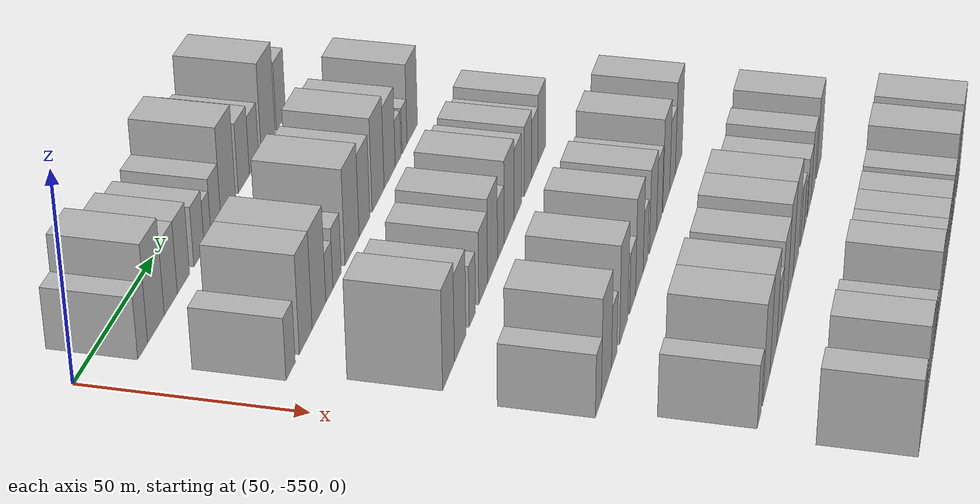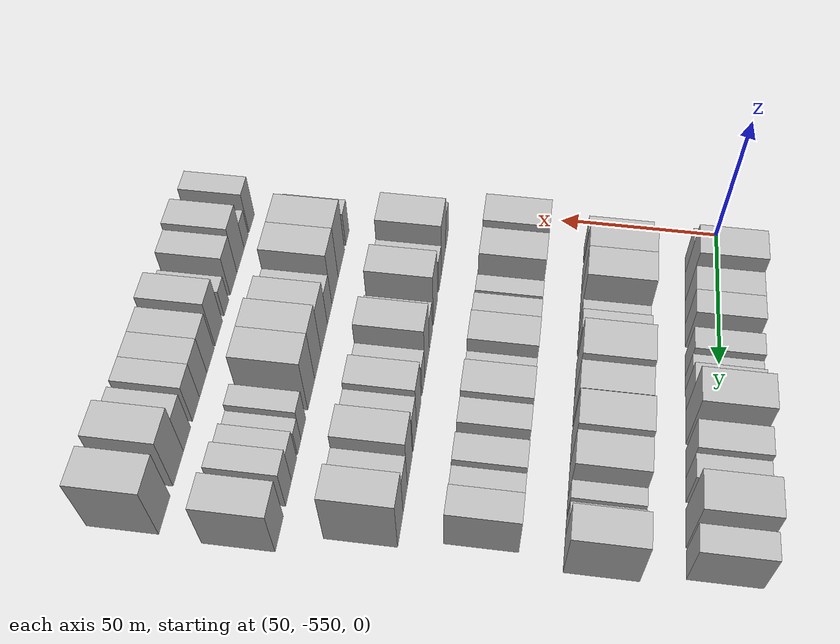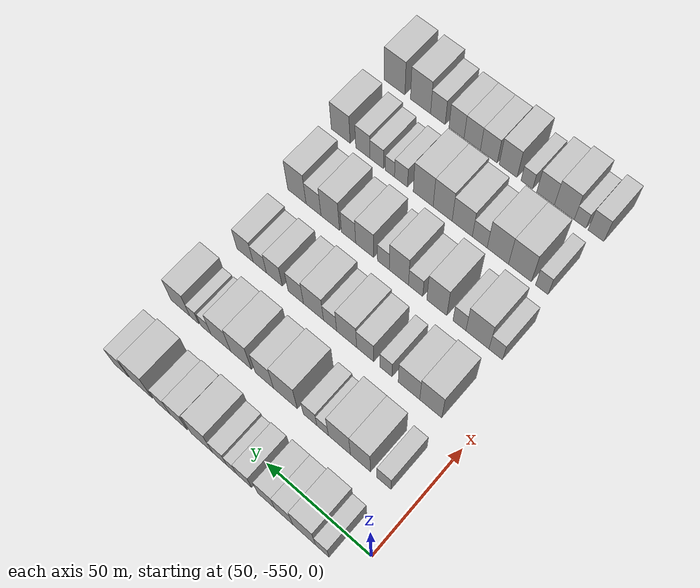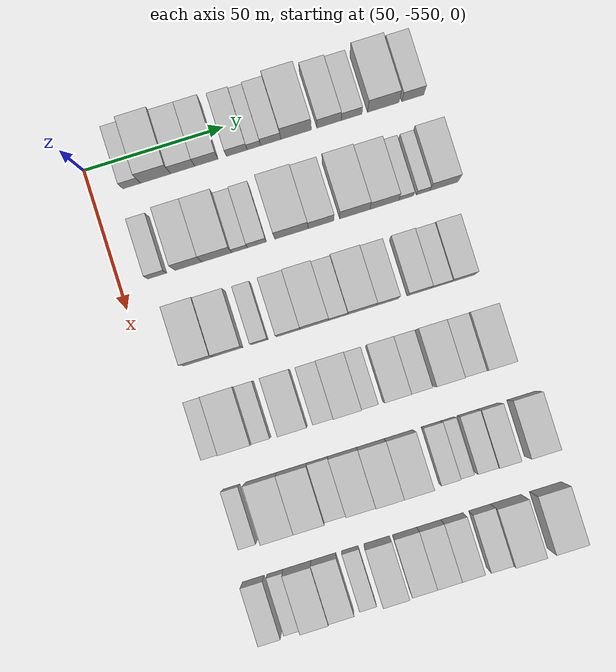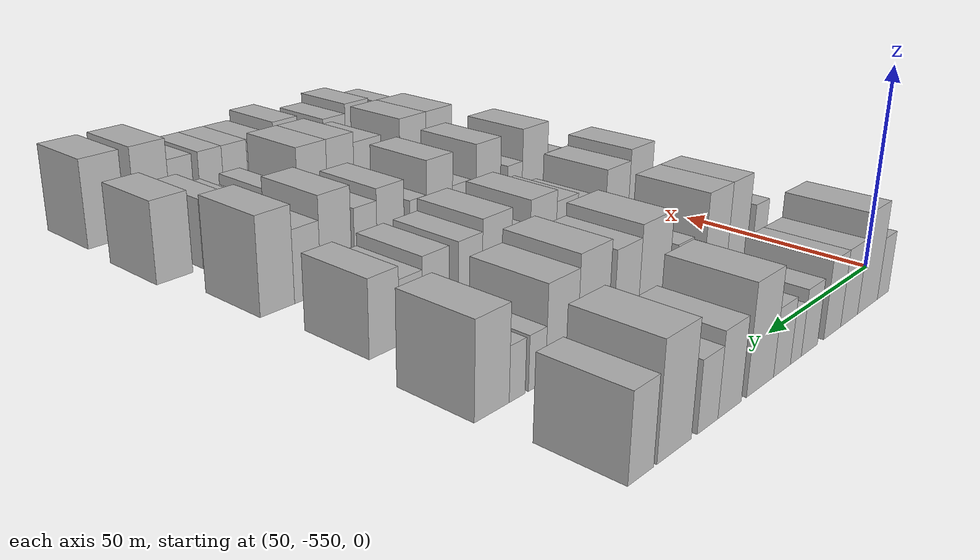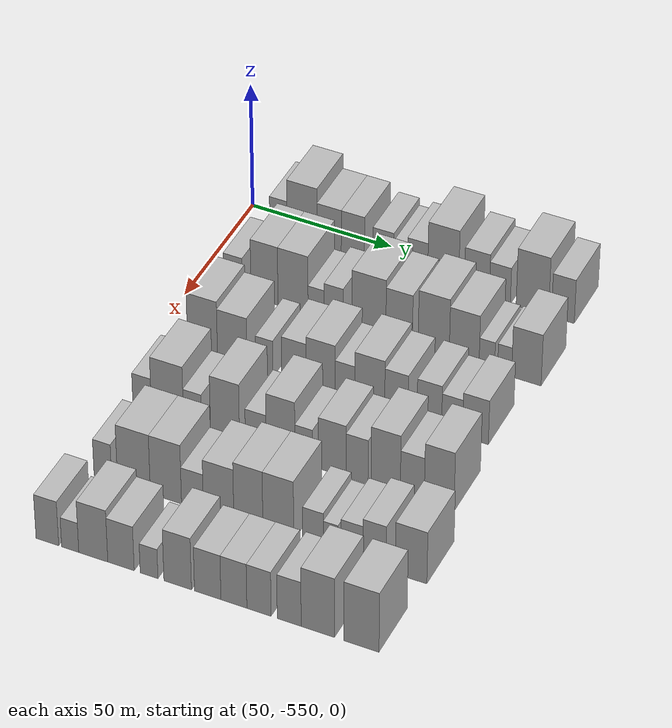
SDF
<sdf version="1.6">
 <world name="default">
  <model name="building_1">
   <static>1</static>
   <pose>50.0000 -535.8745 0 0.000000 0.000000 0.000000</pose>
   <link name="link">
    <pose>0 0 7.50 0 0 0</pose>
    <collision name="collision"><geometry><box><size>20.0000 6.2510 15.0000</size></box></geometry></collision>
    <visual name="visual">
     <cast_shadows>0</cast_shadows>
     <geometry><box><size>20.0000 6.2510 15.0000</size></box></geometry>
     <material>
      <script>
       <uri>model://HANNAS_wall/materials/scripts</uri>
       <uri>model://HANNAS_wall/materials/textures</uri>
       <name>vrc/HANNAS_wall</name>
      </script>
     </material>
    </visual>
   </link>
  </model>
  <model name="building_2">
   <static>1</static>
   <pose>50.0000 -527.3522 0 0.000000 0.000000 0.000000</pose>
   <link name="link">
    <pose>0 0 12.00 0 0 0</pose>
    <collision name="collision"><geometry><box><size>20.0000 10.7935 24.0000</size></box></geometry></collision>
    <visual name="visual">
     <cast_shadows>0</cast_shadows>
     <geometry><box><size>20.0000 10.7935 24.0000</size></box></geometry>
     <material>
      <script>
       <uri>model://HANNAS_wall/materials/scripts</uri>
       <uri>model://HANNAS_wall/materials/textures</uri>
       <name>vrc/HANNAS_wall</name>
      </script>
     </material>
    </visual>
   </link>
  </model>
  <model name="building_3">
   <static>1</static>
   <pose>50.0000 -517.6085 0 0.000000 0.000000 0.000000</pose>
   <link name="link">
    <pose>0 0 9.00 0 0 0</pose>
    <collision name="collision"><geometry><box><size>20.0000 8.6939 18.0000</size></box></geometry></collision>
    <visual name="visual">
     <cast_shadows>0</cast_shadows>
     <geometry><box><size>20.0000 8.6939 18.0000</size></box></geometry>
     <material>
      <script>
       <uri>model://HANNAS_wall/materials/scripts</uri>
       <uri>model://HANNAS_wall/materials/textures</uri>
       <name>vrc/HANNAS_wall</name>
      </script>
     </material>
    </visual>
   </link>
  </model>
  <model name="building_4">
   <static>1</static>
   <pose>50.0000 -509.1116 0 0.000000 0.000000 0.000000</pose>
   <link name="link">
    <pose>0 0 9.00 0 0 0</pose>
    <collision name="collision"><geometry><box><size>20.0000 8.2998 18.0000</size></box></geometry></collision>
    <visual name="visual">
     <cast_shadows>0</cast_shadows>
     <geometry><box><size>20.0000 8.2998 18.0000</size></box></geometry>
     <material>
      <script>
       <uri>model://HANNAS_wall/materials/scripts</uri>
       <uri>model://HANNAS_wall/materials/textures</uri>
       <name>vrc/HANNAS_wall</name>
      </script>
     </material>
    </visual>
   </link>
  </model>
  <model name="building_5">
   <static>1</static>
   <pose>50.0000 -498.2551 0 0.000000 0.000000 0.000000</pose>
   <link name="link">
    <pose>0 0 7.50 0 0 0</pose>
    <collision name="collision"><geometry><box><size>20.0000 7.4133 15.0000</size></box></geometry></collision>
    <visual name="visual">
     <cast_shadows>0</cast_shadows>
     <geometry><box><size>20.0000 7.4133 15.0000</size></box></geometry>
     <material>
      <script>
       <uri>model://HANNAS_wall/materials/scripts</uri>
       <uri>model://HANNAS_wall/materials/textures</uri>
       <name>vrc/HANNAS_wall</name>
      </script>
     </material>
    </visual>
   </link>
  </model>
  <model name="building_6">
   <static>1</static>
   <pose>50.0000 -492.1397 0 0.000000 0.000000 0.000000</pose>
   <link name="link">
    <pose>0 0 6.00 0 0 0</pose>
    <collision name="collision"><geometry><box><size>20.0000 4.8175 12.0000</size></box></geometry></collision>
    <visual name="visual">
     <cast_shadows>0</cast_shadows>
     <geometry><box><size>20.0000 4.8175 12.0000</size></box></geometry>
     <material>
      <script>
       <uri>model://HANNAS_wall/materials/scripts</uri>
       <uri>model://HANNAS_wall/materials/textures</uri>
       <name>vrc/HANNAS_wall</name>
      </script>
     </material>
    </visual>
   </link>
  </model>
  <model name="building_7">
   <static>1</static>
   <pose>50.0000 -486.1267 0 0.000000 0.000000 0.000000</pose>
   <link name="link">
    <pose>0 0 7.50 0 0 0</pose>
    <collision name="collision"><geometry><box><size>20.0000 7.2085 15.0000</size></box></geometry></collision>
    <visual name="visual">
     <cast_shadows>0</cast_shadows>
     <geometry><box><size>20.0000 7.2085 15.0000</size></box></geometry>
     <material>
      <script>
       <uri>model://HANNAS_wall/materials/scripts</uri>
       <uri>model://HANNAS_wall/materials/textures</uri>
       <name>vrc/HANNAS_wall</name>
      </script>
     </material>
    </visual>
   </link>
  </model>
  <model name="building_8">
   <static>1</static>
   <pose>50.0000 -477.0658 0 0.000000 0.000000 0.000000</pose>
   <link name="link">
    <pose>0 0 12.00 0 0 0</pose>
    <collision name="collision"><geometry><box><size>20.0000 10.9132 24.0000</size></box></geometry></collision>
    <visual name="visual">
     <cast_shadows>0</cast_shadows>
     <geometry><box><size>20.0000 10.9132 24.0000</size></box></geometry>
     <material>
      <script>
       <uri>model://HANNAS_wall/materials/scripts</uri>
       <uri>model://HANNAS_wall/materials/textures</uri>
       <name>vrc/HANNAS_wall</name>
      </script>
     </material>
    </visual>
   </link>
  </model>
  <model name="building_9">
   <static>1</static>
   <pose>50.0000 -465.2385 0 0.000000 0.000000 0.000000</pose>
   <link name="link">
    <pose>0 0 9.00 0 0 0</pose>
    <collision name="collision"><geometry><box><size>20.0000 8.7415 18.0000</size></box></geometry></collision>
    <visual name="visual">
     <cast_shadows>0</cast_shadows>
     <geometry><box><size>20.0000 8.7415 18.0000</size></box></geometry>
     <material>
      <script>
       <uri>model://HANNAS_wall/materials/scripts</uri>
       <uri>model://HANNAS_wall/materials/textures</uri>
       <name>vrc/HANNAS_wall</name>
      </script>
     </material>
    </visual>
   </link>
  </model>
  <model name="building_10">
   <static>1</static>
   <pose>50.0000 -457.1915 0 0.000000 0.000000 0.000000</pose>
   <link name="link">
    <pose>0 0 7.50 0 0 0</pose>
    <collision name="collision"><geometry><box><size>20.0000 7.3526 15.0000</size></box></geometry></collision>
    <visual name="visual">
     <cast_shadows>0</cast_shadows>
     <geometry><box><size>20.0000 7.3526 15.0000</size></box></geometry>
     <material>
      <script>
       <uri>model://HANNAS_wall/materials/scripts</uri>
       <uri>model://HANNAS_wall/materials/textures</uri>
       <name>vrc/HANNAS_wall</name>
      </script>
     </material>
    </visual>
   </link>
  </model>
  <model name="building_11">
   <static>1</static>
   <pose>50.0000 -445.8810 0 0.000000 0.000000 0.000000</pose>
   <link name="link">
    <pose>0 0 12.00 0 0 0</pose>
    <collision name="collision"><geometry><box><size>20.0000 11.2683 24.0000</size></box></geometry></collision>
    <visual name="visual">
     <cast_shadows>0</cast_shadows>
     <geometry><box><size>20.0000 11.2683 24.0000</size></box></geometry>
     <material>
      <script>
       <uri>model://HANNAS_wall/materials/scripts</uri>
       <uri>model://HANNAS_wall/materials/textures</uri>
       <name>vrc/HANNAS_wall</name>
      </script>
     </material>
    </visual>
   </link>
  </model>
  <model name="building_12">
   <static>1</static>
   <pose>50.0000 -435.3083 0 0.000000 0.000000 0.000000</pose>
   <link name="link">
    <pose>0 0 9.00 0 0 0</pose>
    <collision name="collision"><geometry><box><size>20.0000 7.8771 18.0000</size></box></geometry></collision>
    <visual name="visual">
     <cast_shadows>0</cast_shadows>
     <geometry><box><size>20.0000 7.8771 18.0000</size></box></geometry>
     <material>
      <script>
       <uri>model://HANNAS_wall/materials/scripts</uri>
       <uri>model://HANNAS_wall/materials/textures</uri>
       <name>vrc/HANNAS_wall</name>
      </script>
     </material>
    </visual>
   </link>
  </model>
  <model name="building_123">
   <static>1</static>
   <pose>82.0000 -536.6521 0 0.000000 0.000000 0.000000</pose>
   <link name="link">
    <pose>0 0 7.50 0 0 0</pose>
    <collision name="collision"><geometry><box><size>20.0000 6.6958 15.0000</size></box></geometry></collision>
    <visual name="visual">
     <cast_shadows>0</cast_shadows>
     <geometry><box><size>20.0000 6.6958 15.0000</size></box></geometry>
     <material>
      <script>
       <uri>model://HANNAS_wall/materials/scripts</uri>
       <uri>model://HANNAS_wall/materials/textures</uri>
       <name>vrc/HANNAS_wall</name>
      </script>
     </material>
    </visual>
   </link>
  </model>
  <model name="building_124">
   <static>1</static>
   <pose>82.0000 -525.4978 0 0.000000 0.000000 0.000000</pose>
   <link name="link">
    <pose>0 0 12.00 0 0 0</pose>
    <collision name="collision"><geometry><box><size>20.0000 9.6128 24.0000</size></box></geometry></collision>
    <visual name="visual">
     <cast_shadows>0</cast_shadows>
     <geometry><box><size>20.0000 9.6128 24.0000</size></box></geometry>
     <material>
      <script>
       <uri>model://HANNAS_wall/materials/scripts</uri>
       <uri>model://HANNAS_wall/materials/textures</uri>
       <name>vrc/HANNAS_wall</name>
      </script>
     </material>
    </visual>
   </link>
  </model>
  <model name="building_125">
   <static>1</static>
   <pose>82.0000 -515.3615 0 0.000000 0.000000 0.000000</pose>
   <link name="link">
    <pose>0 0 12.00 0 0 0</pose>
    <collision name="collision"><geometry><box><size>20.0000 10.6598 24.0000</size></box></geometry></collision>
    <visual name="visual">
     <cast_shadows>0</cast_shadows>
     <geometry><box><size>20.0000 10.6598 24.0000</size></box></geometry>
     <material>
      <script>
       <uri>model://HANNAS_wall/materials/scripts</uri>
       <uri>model://HANNAS_wall/materials/textures</uri>
       <name>vrc/HANNAS_wall</name>
      </script>
     </material>
    </visual>
   </link>
  </model>
  <model name="building_126">
   <static>1</static>
   <pose>82.0000 -507.2166 0 0.000000 0.000000 0.000000</pose>
   <link name="link">
    <pose>0 0 6.00 0 0 0</pose>
    <collision name="collision"><geometry><box><size>20.0000 5.6299 12.0000</size></box></geometry></collision>
    <visual name="visual">
     <cast_shadows>0</cast_shadows>
     <geometry><box><size>20.0000 5.6299 12.0000</size></box></geometry>
     <material>
      <script>
       <uri>model://HANNAS_wall/materials/scripts</uri>
       <uri>model://HANNAS_wall/materials/textures</uri>
       <name>vrc/HANNAS_wall</name>
      </script>
     </material>
    </visual>
   </link>
  </model>
  <model name="building_127">
   <static>1</static>
   <pose>82.0000 -501.0376 0 0.000000 0.000000 0.000000</pose>
   <link name="link">
    <pose>0 0 7.50 0 0 0</pose>
    <collision name="collision"><geometry><box><size>20.0000 6.7283 15.0000</size></box></geometry></collision>
    <visual name="visual">
     <cast_shadows>0</cast_shadows>
     <geometry><box><size>20.0000 6.7283 15.0000</size></box></geometry>
     <material>
      <script>
       <uri>model://HANNAS_wall/materials/scripts</uri>
       <uri>model://HANNAS_wall/materials/textures</uri>
       <name>vrc/HANNAS_wall</name>
      </script>
     </material>
    </visual>
   </link>
  </model>
  <model name="building_128">
   <static>1</static>
   <pose>82.0000 -488.7170 0 0.000000 0.000000 0.000000</pose>
   <link name="link">
    <pose>0 0 12.00 0 0 0</pose>
    <collision name="collision"><geometry><box><size>20.0000 11.9128 24.0000</size></box></geometry></collision>
    <visual name="visual">
     <cast_shadows>0</cast_shadows>
     <geometry><box><size>20.0000 11.9128 24.0000</size></box></geometry>
     <material>
      <script>
       <uri>model://HANNAS_wall/materials/scripts</uri>
       <uri>model://HANNAS_wall/materials/textures</uri>
       <name>vrc/HANNAS_wall</name>
      </script>
     </material>
    </visual>
   </link>
  </model>
  <model name="building_129">
   <static>1</static>
   <pose>82.0000 -478.1399 0 0.000000 0.000000 0.000000</pose>
   <link name="link">
    <pose>0 0 10.50 0 0 0</pose>
    <collision name="collision"><geometry><box><size>20.0000 9.2414 21.0000</size></box></geometry></collision>
    <visual name="visual">
     <cast_shadows>0</cast_shadows>
     <geometry><box><size>20.0000 9.2414 21.0000</size></box></geometry>
     <material>
      <script>
       <uri>model://HANNAS_wall/materials/scripts</uri>
       <uri>model://HANNAS_wall/materials/textures</uri>
       <name>vrc/HANNAS_wall</name>
      </script>
     </material>
    </visual>
   </link>
  </model>
  <model name="building_130">
   <static>1</static>
   <pose>82.0000 -466.1386 0 0.000000 0.000000 0.000000</pose>
   <link name="link">
    <pose>0 0 12.00 0 0 0</pose>
    <collision name="collision"><geometry><box><size>20.0000 10.7614 24.0000</size></box></geometry></collision>
    <visual name="visual">
     <cast_shadows>0</cast_shadows>
     <geometry><box><size>20.0000 10.7614 24.0000</size></box></geometry>
     <material>
      <script>
       <uri>model://HANNAS_wall/materials/scripts</uri>
       <uri>model://HANNAS_wall/materials/textures</uri>
       <name>vrc/HANNAS_wall</name>
      </script>
     </material>
    </visual>
   </link>
  </model>
  <model name="building_131">
   <static>1</static>
   <pose>82.0000 -455.6285 0 0.000000 0.000000 0.000000</pose>
   <link name="link">
    <pose>0 0 10.50 0 0 0</pose>
    <collision name="collision"><geometry><box><size>20.0000 10.2587 21.0000</size></box></geometry></collision>
    <visual name="visual">
     <cast_shadows>0</cast_shadows>
     <geometry><box><size>20.0000 10.2587 21.0000</size></box></geometry>
     <material>
      <script>
       <uri>model://HANNAS_wall/materials/scripts</uri>
       <uri>model://HANNAS_wall/materials/textures</uri>
       <name>vrc/HANNAS_wall</name>
      </script>
     </material>
    </visual>
   </link>
  </model>
  <model name="building_132">
   <static>1</static>
   <pose>82.0000 -447.8293 0 0.000000 0.000000 0.000000</pose>
   <link name="link">
    <pose>0 0 6.00 0 0 0</pose>
    <collision name="collision"><geometry><box><size>20.0000 5.3396 12.0000</size></box></geometry></collision>
    <visual name="visual">
     <cast_shadows>0</cast_shadows>
     <geometry><box><size>20.0000 5.3396 12.0000</size></box></geometry>
     <material>
      <script>
       <uri>model://HANNAS_wall/materials/scripts</uri>
       <uri>model://HANNAS_wall/materials/textures</uri>
       <name>vrc/HANNAS_wall</name>
      </script>
     </material>
    </visual>
   </link>
  </model>
  <model name="building_133">
   <static>1</static>
   <pose>82.0000 -441.7567 0 0.000000 0.000000 0.000000</pose>
   <link name="link">
    <pose>0 0 6.00 0 0 0</pose>
    <collision name="collision"><geometry><box><size>20.0000 4.8057 12.0000</size></box></geometry></collision>
    <visual name="visual">
     <cast_shadows>0</cast_shadows>
     <geometry><box><size>20.0000 4.8057 12.0000</size></box></geometry>
     <material>
      <script>
       <uri>model://HANNAS_wall/materials/scripts</uri>
       <uri>model://HANNAS_wall/materials/textures</uri>
       <name>vrc/HANNAS_wall</name>
      </script>
     </material>
    </visual>
   </link>
  </model>
  <model name="building_134">
   <static>1</static>
   <pose>82.0000 -434.3167 0 0.000000 0.000000 0.000000</pose>
   <link name="link">
    <pose>0 0 10.50 0 0 0</pose>
    <collision name="collision"><geometry><box><size>20.0000 10.0742 21.0000</size></box></geometry></collision>
    <visual name="visual">
     <cast_shadows>0</cast_shadows>
     <geometry><box><size>20.0000 10.0742 21.0000</size></box></geometry>
     <material>
      <script>
       <uri>model://HANNAS_wall/materials/scripts</uri>
       <uri>model://HANNAS_wall/materials/textures</uri>
       <name>vrc/HANNAS_wall</name>
      </script>
     </material>
    </visual>
   </link>
  </model>
  <model name="building_240">
   <static>1</static>
   <pose>114.0000 -531.7302 0 0.000000 0.000000 0.000000</pose>
   <link name="link">
    <pose>0 0 12.00 0 0 0</pose>
    <collision name="collision"><geometry><box><size>20.0000 10.5396 24.0000</size></box></geometry></collision>
    <visual name="visual">
     <cast_shadows>0</cast_shadows>
     <geometry><box><size>20.0000 10.5396 24.0000</size></box></geometry>
     <material>
      <script>
       <uri>model://HANNAS_wall/materials/scripts</uri>
       <uri>model://HANNAS_wall/materials/textures</uri>
       <name>vrc/HANNAS_wall</name>
      </script>
     </material>
    </visual>
   </link>
  </model>
  <model name="building_241">
   <static>1</static>
   <pose>114.0000 -521.2682 0 0.000000 0.000000 0.000000</pose>
   <link name="link">
    <pose>0 0 10.50 0 0 0</pose>
    <collision name="collision"><geometry><box><size>20.0000 10.3843 21.0000</size></box></geometry></collision>
    <visual name="visual">
     <cast_shadows>0</cast_shadows>
     <geometry><box><size>20.0000 10.3843 21.0000</size></box></geometry>
     <material>
      <script>
       <uri>model://HANNAS_wall/materials/scripts</uri>
       <uri>model://HANNAS_wall/materials/textures</uri>
       <name>vrc/HANNAS_wall</name>
      </script>
     </material>
    </visual>
   </link>
  </model>
  <model name="building_242">
   <static>1</static>
   <pose>114.0000 -510.0686 0 0.000000 0.000000 0.000000</pose>
   <link name="link">
    <pose>0 0 7.50 0 0 0</pose>
    <collision name="collision"><geometry><box><size>20.0000 6.0149 15.0000</size></box></geometry></collision>
    <visual name="visual">
     <cast_shadows>0</cast_shadows>
     <geometry><box><size>20.0000 6.0149 15.0000</size></box></geometry>
     <material>
      <script>
       <uri>model://HANNAS_wall/materials/scripts</uri>
       <uri>model://HANNAS_wall/materials/textures</uri>
       <name>vrc/HANNAS_wall</name>
      </script>
     </material>
    </visual>
   </link>
  </model>
  <model name="building_243">
   <static>1</static>
   <pose>114.0000 -499.8135 0 0.000000 0.000000 0.000000</pose>
   <link name="link">
    <pose>0 0 9.00 0 0 0</pose>
    <collision name="collision"><geometry><box><size>20.0000 8.4954 18.0000</size></box></geometry></collision>
    <visual name="visual">
     <cast_shadows>0</cast_shadows>
     <geometry><box><size>20.0000 8.4954 18.0000</size></box></geometry>
     <material>
      <script>
       <uri>model://HANNAS_wall/materials/scripts</uri>
       <uri>model://HANNAS_wall/materials/textures</uri>
       <name>vrc/HANNAS_wall</name>
      </script>
     </material>
    </visual>
   </link>
  </model>
  <model name="building_244">
   <static>1</static>
   <pose>114.0000 -490.5548 0 0.000000 0.000000 0.000000</pose>
   <link name="link">
    <pose>0 0 10.50 0 0 0</pose>
    <collision name="collision"><geometry><box><size>20.0000 10.0222 21.0000</size></box></geometry></collision>
    <visual name="visual">
     <cast_shadows>0</cast_shadows>
     <geometry><box><size>20.0000 10.0222 21.0000</size></box></geometry>
     <material>
      <script>
       <uri>model://HANNAS_wall/materials/scripts</uri>
       <uri>model://HANNAS_wall/materials/textures</uri>
       <name>vrc/HANNAS_wall</name>
      </script>
     </material>
    </visual>
   </link>
  </model>
  <model name="building_245">
   <static>1</static>
   <pose>114.0000 -482.1801 0 0.000000 0.000000 0.000000</pose>
   <link name="link">
    <pose>0 0 7.50 0 0 0</pose>
    <collision name="collision"><geometry><box><size>20.0000 6.7272 15.0000</size></box></geometry></collision>
    <visual name="visual">
     <cast_shadows>0</cast_shadows>
     <geometry><box><size>20.0000 6.7272 15.0000</size></box></geometry>
     <material>
      <script>
       <uri>model://HANNAS_wall/materials/scripts</uri>
       <uri>model://HANNAS_wall/materials/textures</uri>
       <name>vrc/HANNAS_wall</name>
      </script>
     </material>
    </visual>
   </link>
  </model>
  <model name="building_246">
   <static>1</static>
   <pose>114.0000 -473.6844 0 0.000000 0.000000 0.000000</pose>
   <link name="link">
    <pose>0 0 10.50 0 0 0</pose>
    <collision name="collision"><geometry><box><size>20.0000 10.2641 21.0000</size></box></geometry></collision>
    <visual name="visual">
     <cast_shadows>0</cast_shadows>
     <geometry><box><size>20.0000 10.2641 21.0000</size></box></geometry>
     <material>
      <script>
       <uri>model://HANNAS_wall/materials/scripts</uri>
       <uri>model://HANNAS_wall/materials/textures</uri>
       <name>vrc/HANNAS_wall</name>
      </script>
     </material>
    </visual>
   </link>
  </model>
  <model name="building_247">
   <static>1</static>
   <pose>114.0000 -464.5445 0 0.000000 0.000000 0.000000</pose>
   <link name="link">
    <pose>0 0 9.00 0 0 0</pose>
    <collision name="collision"><geometry><box><size>20.0000 8.0159 18.0000</size></box></geometry></collision>
    <visual name="visual">
     <cast_shadows>0</cast_shadows>
     <geometry><box><size>20.0000 8.0159 18.0000</size></box></geometry>
     <material>
      <script>
       <uri>model://HANNAS_wall/materials/scripts</uri>
       <uri>model://HANNAS_wall/materials/textures</uri>
       <name>vrc/HANNAS_wall</name>
      </script>
     </material>
    </visual>
   </link>
  </model>
  <model name="building_248">
   <static>1</static>
   <pose>114.0000 -453.3615 0 0.000000 0.000000 0.000000</pose>
   <link name="link">
    <pose>0 0 9.00 0 0 0</pose>
    <collision name="collision"><geometry><box><size>20.0000 8.3501 18.0000</size></box></geometry></collision>
    <visual name="visual">
     <cast_shadows>0</cast_shadows>
     <geometry><box><size>20.0000 8.3501 18.0000</size></box></geometry>
     <material>
      <script>
       <uri>model://HANNAS_wall/materials/scripts</uri>
       <uri>model://HANNAS_wall/materials/textures</uri>
       <name>vrc/HANNAS_wall</name>
      </script>
     </material>
    </visual>
   </link>
  </model>
  <model name="building_249">
   <static>1</static>
   <pose>114.0000 -445.6401 0 0.000000 0.000000 0.000000</pose>
   <link name="link">
    <pose>0 0 7.50 0 0 0</pose>
    <collision name="collision"><geometry><box><size>20.0000 7.0929 15.0000</size></box></geometry></collision>
    <visual name="visual">
     <cast_shadows>0</cast_shadows>
     <geometry><box><size>20.0000 7.0929 15.0000</size></box></geometry>
     <material>
      <script>
       <uri>model://HANNAS_wall/materials/scripts</uri>
       <uri>model://HANNAS_wall/materials/textures</uri>
       <name>vrc/HANNAS_wall</name>
      </script>
     </material>
    </visual>
   </link>
  </model>
  <model name="building_250">
   <static>1</static>
   <pose>114.0000 -437.7413 0 0.000000 0.000000 0.000000</pose>
   <link name="link">
    <pose>0 0 9.00 0 0 0</pose>
    <collision name="collision"><geometry><box><size>20.0000 8.7047 18.0000</size></box></geometry></collision>
    <visual name="visual">
     <cast_shadows>0</cast_shadows>
     <geometry><box><size>20.0000 8.7047 18.0000</size></box></geometry>
     <material>
      <script>
       <uri>model://HANNAS_wall/materials/scripts</uri>
       <uri>model://HANNAS_wall/materials/textures</uri>
       <name>vrc/HANNAS_wall</name>
      </script>
     </material>
    </visual>
   </link>
  </model>
  <model name="building_359">
   <static>1</static>
   <pose>146.0000 -536.7776 0 0.000000 0.000000 0.000000</pose>
   <link name="link">
    <pose>0 0 7.50 0 0 0</pose>
    <collision name="collision"><geometry><box><size>20.0000 6.4447 15.0000</size></box></geometry></collision>
    <visual name="visual">
     <cast_shadows>0</cast_shadows>
     <geometry><box><size>20.0000 6.4447 15.0000</size></box></geometry>
     <material>
      <script>
       <uri>model://HANNAS_wall/materials/scripts</uri>
       <uri>model://HANNAS_wall/materials/textures</uri>
       <name>vrc/HANNAS_wall</name>
      </script>
     </material>
    </visual>
   </link>
  </model>
  <model name="building_360">
   <static>1</static>
   <pose>146.0000 -527.9765 0 0.000000 0.000000 0.000000</pose>
   <link name="link">
    <pose>0 0 12.00 0 0 0</pose>
    <collision name="collision"><geometry><box><size>20.0000 11.1575 24.0000</size></box></geometry></collision>
    <visual name="visual">
     <cast_shadows>0</cast_shadows>
     <geometry><box><size>20.0000 11.1575 24.0000</size></box></geometry>
     <material>
      <script>
       <uri>model://HANNAS_wall/materials/scripts</uri>
       <uri>model://HANNAS_wall/materials/textures</uri>
       <name>vrc/HANNAS_wall</name>
      </script>
     </material>
    </visual>
   </link>
  </model>
  <model name="building_361">
   <static>1</static>
   <pose>146.0000 -519.2371 0 0.000000 0.000000 0.000000</pose>
   <link name="link">
    <pose>0 0 7.50 0 0 0</pose>
    <collision name="collision"><geometry><box><size>20.0000 6.3214 15.0000</size></box></geometry></collision>
    <visual name="visual">
     <cast_shadows>0</cast_shadows>
     <geometry><box><size>20.0000 6.3214 15.0000</size></box></geometry>
     <material>
      <script>
       <uri>model://HANNAS_wall/materials/scripts</uri>
       <uri>model://HANNAS_wall/materials/textures</uri>
       <name>vrc/HANNAS_wall</name>
      </script>
     </material>
    </visual>
   </link>
  </model>
  <model name="building_362">
   <static>1</static>
   <pose>146.0000 -508.0931 0 0.000000 0.000000 0.000000</pose>
   <link name="link">
    <pose>0 0 12.00 0 0 0</pose>
    <collision name="collision"><geometry><box><size>20.0000 9.9666 24.0000</size></box></geometry></collision>
    <visual name="visual">
     <cast_shadows>0</cast_shadows>
     <geometry><box><size>20.0000 9.9666 24.0000</size></box></geometry>
     <material>
      <script>
       <uri>model://HANNAS_wall/materials/scripts</uri>
       <uri>model://HANNAS_wall/materials/textures</uri>
       <name>vrc/HANNAS_wall</name>
      </script>
     </material>
    </visual>
   </link>
  </model>
  <model name="building_363">
   <static>1</static>
   <pose>146.0000 -497.5305 0 0.000000 0.000000 0.000000</pose>
   <link name="link">
    <pose>0 0 7.50 0 0 0</pose>
    <collision name="collision"><geometry><box><size>20.0000 7.1586 15.0000</size></box></geometry></collision>
    <visual name="visual">
     <cast_shadows>0</cast_shadows>
     <geometry><box><size>20.0000 7.1586 15.0000</size></box></geometry>
     <material>
      <script>
       <uri>model://HANNAS_wall/materials/scripts</uri>
       <uri>model://HANNAS_wall/materials/textures</uri>
       <name>vrc/HANNAS_wall</name>
      </script>
     </material>
    </visual>
   </link>
  </model>
  <model name="building_364">
   <static>1</static>
   <pose>146.0000 -489.0833 0 0.000000 0.000000 0.000000</pose>
   <link name="link">
    <pose>0 0 12.00 0 0 0</pose>
    <collision name="collision"><geometry><box><size>20.0000 9.7359 24.0000</size></box></geometry></collision>
    <visual name="visual">
     <cast_shadows>0</cast_shadows>
     <geometry><box><size>20.0000 9.7359 24.0000</size></box></geometry>
     <material>
      <script>
       <uri>model://HANNAS_wall/materials/scripts</uri>
       <uri>model://HANNAS_wall/materials/textures</uri>
       <name>vrc/HANNAS_wall</name>
      </script>
     </material>
    </visual>
   </link>
  </model>
  <model name="building_365">
   <static>1</static>
   <pose>146.0000 -481.2144 0 0.000000 0.000000 0.000000</pose>
   <link name="link">
    <pose>0 0 7.50 0 0 0</pose>
    <collision name="collision"><geometry><box><size>20.0000 6.0019 15.0000</size></box></geometry></collision>
    <visual name="visual">
     <cast_shadows>0</cast_shadows>
     <geometry><box><size>20.0000 6.0019 15.0000</size></box></geometry>
     <material>
      <script>
       <uri>model://HANNAS_wall/materials/scripts</uri>
       <uri>model://HANNAS_wall/materials/textures</uri>
       <name>vrc/HANNAS_wall</name>
      </script>
     </material>
    </visual>
   </link>
  </model>
  <model name="building_366">
   <static>1</static>
   <pose>146.0000 -471.5676 0 0.000000 0.000000 0.000000</pose>
   <link name="link">
    <pose>0 0 10.50 0 0 0</pose>
    <collision name="collision"><geometry><box><size>20.0000 9.2916 21.0000</size></box></geometry></collision>
    <visual name="visual">
     <cast_shadows>0</cast_shadows>
     <geometry><box><size>20.0000 9.2916 21.0000</size></box></geometry>
     <material>
      <script>
       <uri>model://HANNAS_wall/materials/scripts</uri>
       <uri>model://HANNAS_wall/materials/textures</uri>
       <name>vrc/HANNAS_wall</name>
      </script>
     </material>
    </visual>
   </link>
  </model>
  <model name="building_367">
   <static>1</static>
   <pose>146.0000 -463.2126 0 0.000000 0.000000 0.000000</pose>
   <link name="link">
    <pose>0 0 9.00 0 0 0</pose>
    <collision name="collision"><geometry><box><size>20.0000 7.4185 18.0000</size></box></geometry></collision>
    <visual name="visual">
     <cast_shadows>0</cast_shadows>
     <geometry><box><size>20.0000 7.4185 18.0000</size></box></geometry>
     <material>
      <script>
       <uri>model://HANNAS_wall/materials/scripts</uri>
       <uri>model://HANNAS_wall/materials/textures</uri>
       <name>vrc/HANNAS_wall</name>
      </script>
     </material>
    </visual>
   </link>
  </model>
  <model name="building_368">
   <static>1</static>
   <pose>146.0000 -453.6058 0 0.000000 0.000000 0.000000</pose>
   <link name="link">
    <pose>0 0 12.00 0 0 0</pose>
    <collision name="collision"><geometry><box><size>20.0000 9.7951 24.0000</size></box></geometry></collision>
    <visual name="visual">
     <cast_shadows>0</cast_shadows>
     <geometry><box><size>20.0000 9.7951 24.0000</size></box></geometry>
     <material>
      <script>
       <uri>model://HANNAS_wall/materials/scripts</uri>
       <uri>model://HANNAS_wall/materials/textures</uri>
       <name>vrc/HANNAS_wall</name>
      </script>
     </material>
    </visual>
   </link>
  </model>
  <model name="building_369">
   <static>1</static>
   <pose>146.0000 -444.7171 0 0.000000 0.000000 0.000000</pose>
   <link name="link">
    <pose>0 0 9.00 0 0 0</pose>
    <collision name="collision"><geometry><box><size>20.0000 7.9824 18.0000</size></box></geometry></collision>
    <visual name="visual">
     <cast_shadows>0</cast_shadows>
     <geometry><box><size>20.0000 7.9824 18.0000</size></box></geometry>
     <material>
      <script>
       <uri>model://HANNAS_wall/materials/scripts</uri>
       <uri>model://HANNAS_wall/materials/textures</uri>
       <name>vrc/HANNAS_wall</name>
      </script>
     </material>
    </visual>
   </link>
  </model>
  <model name="building_370">
   <static>1</static>
   <pose>146.0000 -435.7814 0 0.000000 0.000000 0.000000</pose>
   <link name="link">
    <pose>0 0 12.00 0 0 0</pose>
    <collision name="collision"><geometry><box><size>20.0000 9.8889 24.0000</size></box></geometry></collision>
    <visual name="visual">
     <cast_shadows>0</cast_shadows>
     <geometry><box><size>20.0000 9.8889 24.0000</size></box></geometry>
     <material>
      <script>
       <uri>model://HANNAS_wall/materials/scripts</uri>
       <uri>model://HANNAS_wall/materials/textures</uri>
       <name>vrc/HANNAS_wall</name>
      </script>
     </material>
    </visual>
   </link>
  </model>
  <model name="building_477">
   <static>1</static>
   <pose>178.0000 -533.9618 0 0.000000 0.000000 0.000000</pose>
   <link name="link">
    <pose>0 0 7.50 0 0 0</pose>
    <collision name="collision"><geometry><box><size>20.0000 6.0765 15.0000</size></box></geometry></collision>
    <visual name="visual">
     <cast_shadows>0</cast_shadows>
     <geometry><box><size>20.0000 6.0765 15.0000</size></box></geometry>
     <material>
      <script>
       <uri>model://HANNAS_wall/materials/scripts</uri>
       <uri>model://HANNAS_wall/materials/textures</uri>
       <name>vrc/HANNAS_wall</name>
      </script>
     </material>
    </visual>
   </link>
  </model>
  <model name="building_478">
   <static>1</static>
   <pose>178.0000 -523.3112 0 0.000000 0.000000 0.000000</pose>
   <link name="link">
    <pose>0 0 12.00 0 0 0</pose>
    <collision name="collision"><geometry><box><size>20.0000 11.2246 24.0000</size></box></geometry></collision>
    <visual name="visual">
     <cast_shadows>0</cast_shadows>
     <geometry><box><size>20.0000 11.2246 24.0000</size></box></geometry>
     <material>
      <script>
       <uri>model://HANNAS_wall/materials/scripts</uri>
       <uri>model://HANNAS_wall/materials/textures</uri>
       <name>vrc/HANNAS_wall</name>
      </script>
     </material>
    </visual>
   </link>
  </model>
  <model name="building_479">
   <static>1</static>
   <pose>178.0000 -512.3980 0 0.000000 0.000000 0.000000</pose>
   <link name="link">
    <pose>0 0 12.00 0 0 0</pose>
    <collision name="collision"><geometry><box><size>20.0000 10.6018 24.0000</size></box></geometry></collision>
    <visual name="visual">
     <cast_shadows>0</cast_shadows>
     <geometry><box><size>20.0000 10.6018 24.0000</size></box></geometry>
     <material>
      <script>
       <uri>model://HANNAS_wall/materials/scripts</uri>
       <uri>model://HANNAS_wall/materials/textures</uri>
       <name>vrc/HANNAS_wall</name>
      </script>
     </material>
    </visual>
   </link>
  </model>
  <model name="building_480">
   <static>1</static>
   <pose>178.0000 -503.3802 0 0.000000 0.000000 0.000000</pose>
   <link name="link">
    <pose>0 0 7.50 0 0 0</pose>
    <collision name="collision"><geometry><box><size>20.0000 7.4337 15.0000</size></box></geometry></collision>
    <visual name="visual">
     <cast_shadows>0</cast_shadows>
     <geometry><box><size>20.0000 7.4337 15.0000</size></box></geometry>
     <material>
      <script>
       <uri>model://HANNAS_wall/materials/scripts</uri>
       <uri>model://HANNAS_wall/materials/textures</uri>
       <name>vrc/HANNAS_wall</name>
      </script>
     </material>
    </visual>
   </link>
  </model>
  <model name="building_481">
   <static>1</static>
   <pose>178.0000 -494.5435 0 0.000000 0.000000 0.000000</pose>
   <link name="link">
    <pose>0 0 10.50 0 0 0</pose>
    <collision name="collision"><geometry><box><size>20.0000 10.2398 21.0000</size></box></geometry></collision>
    <visual name="visual">
     <cast_shadows>0</cast_shadows>
     <geometry><box><size>20.0000 10.2398 21.0000</size></box></geometry>
     <material>
      <script>
       <uri>model://HANNAS_wall/materials/scripts</uri>
       <uri>model://HANNAS_wall/materials/textures</uri>
       <name>vrc/HANNAS_wall</name>
      </script>
     </material>
    </visual>
   </link>
  </model>
  <model name="building_482">
   <static>1</static>
   <pose>178.0000 -484.5489 0 0.000000 0.000000 0.000000</pose>
   <link name="link">
    <pose>0 0 12.00 0 0 0</pose>
    <collision name="collision"><geometry><box><size>20.0000 9.7495 24.0000</size></box></geometry></collision>
    <visual name="visual">
     <cast_shadows>0</cast_shadows>
     <geometry><box><size>20.0000 9.7495 24.0000</size></box></geometry>
     <material>
      <script>
       <uri>model://HANNAS_wall/materials/scripts</uri>
       <uri>model://HANNAS_wall/materials/textures</uri>
       <name>vrc/HANNAS_wall</name>
      </script>
     </material>
    </visual>
   </link>
  </model>
  <model name="building_483">
   <static>1</static>
   <pose>178.0000 -474.5270 0 0.000000 0.000000 0.000000</pose>
   <link name="link">
    <pose>0 0 12.00 0 0 0</pose>
    <collision name="collision"><geometry><box><size>20.0000 10.2943 24.0000</size></box></geometry></collision>
    <visual name="visual">
     <cast_shadows>0</cast_shadows>
     <geometry><box><size>20.0000 10.2943 24.0000</size></box></geometry>
     <material>
      <script>
       <uri>model://HANNAS_wall/materials/scripts</uri>
       <uri>model://HANNAS_wall/materials/textures</uri>
       <name>vrc/HANNAS_wall</name>
      </script>
     </material>
    </visual>
   </link>
  </model>
  <model name="building_484">
   <static>1</static>
   <pose>178.0000 -462.9639 0 0.000000 0.000000 0.000000</pose>
   <link name="link">
    <pose>0 0 7.50 0 0 0</pose>
    <collision name="collision"><geometry><box><size>20.0000 6.8317 15.0000</size></box></geometry></collision>
    <visual name="visual">
     <cast_shadows>0</cast_shadows>
     <geometry><box><size>20.0000 6.8317 15.0000</size></box></geometry>
     <material>
      <script>
       <uri>model://HANNAS_wall/materials/scripts</uri>
       <uri>model://HANNAS_wall/materials/textures</uri>
       <name>vrc/HANNAS_wall</name>
      </script>
     </material>
    </visual>
   </link>
  </model>
  <model name="building_485">
   <static>1</static>
   <pose>178.0000 -457.1118 0 0.000000 0.000000 0.000000</pose>
   <link name="link">
    <pose>0 0 6.00 0 0 0</pose>
    <collision name="collision"><geometry><box><size>20.0000 4.8726 12.0000</size></box></geometry></collision>
    <visual name="visual">
     <cast_shadows>0</cast_shadows>
     <geometry><box><size>20.0000 4.8726 12.0000</size></box></geometry>
     <material>
      <script>
       <uri>model://HANNAS_wall/materials/scripts</uri>
       <uri>model://HANNAS_wall/materials/textures</uri>
       <name>vrc/HANNAS_wall</name>
      </script>
     </material>
    </visual>
   </link>
  </model>
  <model name="building_486">
   <static>1</static>
   <pose>178.0000 -450.0748 0 0.000000 0.000000 0.000000</pose>
   <link name="link">
    <pose>0 0 7.50 0 0 0</pose>
    <collision name="collision"><geometry><box><size>20.0000 7.2012 15.0000</size></box></geometry></collision>
    <visual name="visual">
     <cast_shadows>0</cast_shadows>
     <geometry><box><size>20.0000 7.2012 15.0000</size></box></geometry>
     <material>
      <script>
       <uri>model://HANNAS_wall/materials/scripts</uri>
       <uri>model://HANNAS_wall/materials/textures</uri>
       <name>vrc/HANNAS_wall</name>
      </script>
     </material>
    </visual>
   </link>
  </model>
  <model name="building_487">
   <static>1</static>
   <pose>178.0000 -442.6468 0 0.000000 0.000000 0.000000</pose>
   <link name="link">
    <pose>0 0 9.00 0 0 0</pose>
    <collision name="collision"><geometry><box><size>20.0000 7.6548 18.0000</size></box></geometry></collision>
    <visual name="visual">
     <cast_shadows>0</cast_shadows>
     <geometry><box><size>20.0000 7.6548 18.0000</size></box></geometry>
     <material>
      <script>
       <uri>model://HANNAS_wall/materials/scripts</uri>
       <uri>model://HANNAS_wall/materials/textures</uri>
       <name>vrc/HANNAS_wall</name>
      </script>
     </material>
    </visual>
   </link>
  </model>
  <model name="building_488">
   <static>1</static>
   <pose>178.0000 -430.6666 0 0.000000 0.000000 0.000000</pose>
   <link name="link">
    <pose>0 0 10.50 0 0 0</pose>
    <collision name="collision"><geometry><box><size>20.0000 10.3057 21.0000</size></box></geometry></collision>
    <visual name="visual">
     <cast_shadows>0</cast_shadows>
     <geometry><box><size>20.0000 10.3057 21.0000</size></box></geometry>
     <material>
      <script>
       <uri>model://HANNAS_wall/materials/scripts</uri>
       <uri>model://HANNAS_wall/materials/textures</uri>
       <name>vrc/HANNAS_wall</name>
      </script>
     </material>
    </visual>
   </link>
  </model>
  <model name="building_590">
   <static>1</static>
   <pose>210.0000 -536.1516 0 0.000000 0.000000 0.000000</pose>
   <link name="link">
    <pose>0 0 9.00 0 0 0</pose>
    <collision name="collision"><geometry><box><size>20.0000 7.6969 18.0000</size></box></geometry></collision>
    <visual name="visual">
     <cast_shadows>0</cast_shadows>
     <geometry><box><size>20.0000 7.6969 18.0000</size></box></geometry>
     <material>
      <script>
       <uri>model://HANNAS_wall/materials/scripts</uri>
       <uri>model://HANNAS_wall/materials/textures</uri>
       <name>vrc/HANNAS_wall</name>
      </script>
     </material>
    </visual>
   </link>
  </model>
  <model name="building_591">
   <static>1</static>
   <pose>210.0000 -528.4065 0 0.000000 0.000000 0.000000</pose>
   <link name="link">
    <pose>0 0 6.00 0 0 0</pose>
    <collision name="collision"><geometry><box><size>20.0000 5.7932 12.0000</size></box></geometry></collision>
    <visual name="visual">
     <cast_shadows>0</cast_shadows>
     <geometry><box><size>20.0000 5.7932 12.0000</size></box></geometry>
     <material>
      <script>
       <uri>model://HANNAS_wall/materials/scripts</uri>
       <uri>model://HANNAS_wall/materials/textures</uri>
       <name>vrc/HANNAS_wall</name>
      </script>
     </material>
    </visual>
   </link>
  </model>
  <model name="building_592">
   <static>1</static>
   <pose>210.0000 -520.6130 0 0.000000 0.000000 0.000000</pose>
   <link name="link">
    <pose>0 0 10.50 0 0 0</pose>
    <collision name="collision"><geometry><box><size>20.0000 9.7938 21.0000</size></box></geometry></collision>
    <visual name="visual">
     <cast_shadows>0</cast_shadows>
     <geometry><box><size>20.0000 9.7938 21.0000</size></box></geometry>
     <material>
      <script>
       <uri>model://HANNAS_wall/materials/scripts</uri>
       <uri>model://HANNAS_wall/materials/textures</uri>
       <name>vrc/HANNAS_wall</name>
      </script>
     </material>
    </visual>
   </link>
  </model>
  <model name="building_593">
   <static>1</static>
   <pose>210.0000 -511.2802 0 0.000000 0.000000 0.000000</pose>
   <link name="link">
    <pose>0 0 9.00 0 0 0</pose>
    <collision name="collision"><geometry><box><size>20.0000 8.8718 18.0000</size></box></geometry></collision>
    <visual name="visual">
     <cast_shadows>0</cast_shadows>
     <geometry><box><size>20.0000 8.8718 18.0000</size></box></geometry>
     <material>
      <script>
       <uri>model://HANNAS_wall/materials/scripts</uri>
       <uri>model://HANNAS_wall/materials/textures</uri>
       <name>vrc/HANNAS_wall</name>
      </script>
     </material>
    </visual>
   </link>
  </model>
  <model name="building_594">
   <static>1</static>
   <pose>210.0000 -501.8781 0 0.000000 0.000000 0.000000</pose>
   <link name="link">
    <pose>0 0 6.00 0 0 0</pose>
    <collision name="collision"><geometry><box><size>20.0000 5.9324 12.0000</size></box></geometry></collision>
    <visual name="visual">
     <cast_shadows>0</cast_shadows>
     <geometry><box><size>20.0000 5.9324 12.0000</size></box></geometry>
     <material>
      <script>
       <uri>model://HANNAS_wall/materials/scripts</uri>
       <uri>model://HANNAS_wall/materials/textures</uri>
       <name>vrc/HANNAS_wall</name>
      </script>
     </material>
    </visual>
   </link>
  </model>
  <model name="building_595">
   <static>1</static>
   <pose>210.0000 -492.3308 0 0.000000 0.000000 0.000000</pose>
   <link name="link">
    <pose>0 0 10.50 0 0 0</pose>
    <collision name="collision"><geometry><box><size>20.0000 9.1622 21.0000</size></box></geometry></collision>
    <visual name="visual">
     <cast_shadows>0</cast_shadows>
     <geometry><box><size>20.0000 9.1622 21.0000</size></box></geometry>
     <material>
      <script>
       <uri>model://HANNAS_wall/materials/scripts</uri>
       <uri>model://HANNAS_wall/materials/textures</uri>
       <name>vrc/HANNAS_wall</name>
      </script>
     </material>
    </visual>
   </link>
  </model>
  <model name="building_596">
   <static>1</static>
   <pose>210.0000 -482.3842 0 0.000000 0.000000 0.000000</pose>
   <link name="link">
    <pose>0 0 9.00 0 0 0</pose>
    <collision name="collision"><geometry><box><size>20.0000 8.7309 18.0000</size></box></geometry></collision>
    <visual name="visual">
     <cast_shadows>0</cast_shadows>
     <geometry><box><size>20.0000 8.7309 18.0000</size></box></geometry>
     <material>
      <script>
       <uri>model://HANNAS_wall/materials/scripts</uri>
       <uri>model://HANNAS_wall/materials/textures</uri>
       <name>vrc/HANNAS_wall</name>
      </script>
     </material>
    </visual>
   </link>
  </model>
  <model name="building_597">
   <static>1</static>
   <pose>210.0000 -473.7450 0 0.000000 0.000000 0.000000</pose>
   <link name="link">
    <pose>0 0 9.00 0 0 0</pose>
    <collision name="collision"><geometry><box><size>20.0000 8.5476 18.0000</size></box></geometry></collision>
    <visual name="visual">
     <cast_shadows>0</cast_shadows>
     <geometry><box><size>20.0000 8.5476 18.0000</size></box></geometry>
     <material>
      <script>
       <uri>model://HANNAS_wall/materials/scripts</uri>
       <uri>model://HANNAS_wall/materials/textures</uri>
       <name>vrc/HANNAS_wall</name>
      </script>
     </material>
    </visual>
   </link>
  </model>
  <model name="building_598">
   <static>1</static>
   <pose>210.0000 -465.4997 0 0.000000 0.000000 0.000000</pose>
   <link name="link">
    <pose>0 0 9.00 0 0 0</pose>
    <collision name="collision"><geometry><box><size>20.0000 7.9431 18.0000</size></box></geometry></collision>
    <visual name="visual">
     <cast_shadows>0</cast_shadows>
     <geometry><box><size>20.0000 7.9431 18.0000</size></box></geometry>
     <material>
      <script>
       <uri>model://HANNAS_wall/materials/scripts</uri>
       <uri>model://HANNAS_wall/materials/textures</uri>
       <name>vrc/HANNAS_wall</name>
      </script>
     </material>
    </visual>
   </link>
  </model>
  <model name="building_599">
   <static>1</static>
   <pose>210.0000 -455.6266 0 0.000000 0.000000 0.000000</pose>
   <link name="link">
    <pose>0 0 9.00 0 0 0</pose>
    <collision name="collision"><geometry><box><size>20.0000 7.8030 18.0000</size></box></geometry></collision>
    <visual name="visual">
     <cast_shadows>0</cast_shadows>
     <geometry><box><size>20.0000 7.8030 18.0000</size></box></geometry>
     <material>
      <script>
       <uri>model://HANNAS_wall/materials/scripts</uri>
       <uri>model://HANNAS_wall/materials/textures</uri>
       <name>vrc/HANNAS_wall</name>
      </script>
     </material>
    </visual>
   </link>
  </model>
  <model name="building_600">
   <static>1</static>
   <pose>210.0000 -446.2995 0 0.000000 0.000000 0.000000</pose>
   <link name="link">
    <pose>0 0 12.00 0 0 0</pose>
    <collision name="collision"><geometry><box><size>20.0000 10.8511 24.0000</size></box></geometry></collision>
    <visual name="visual">
     <cast_shadows>0</cast_shadows>
     <geometry><box><size>20.0000 10.8511 24.0000</size></box></geometry>
     <material>
      <script>
       <uri>model://HANNAS_wall/materials/scripts</uri>
       <uri>model://HANNAS_wall/materials/textures</uri>
       <name>vrc/HANNAS_wall</name>
      </script>
     </material>
    </visual>
   </link>
  </model>
  <model name="building_601">
   <static>1</static>
   <pose>210.0000 -432.1959 0 0.000000 0.000000 0.000000</pose>
   <link name="link">
    <pose>0 0 12.00 0 0 0</pose>
    <collision name="collision"><geometry><box><size>20.0000 11.3561 24.0000</size></box></geometry></collision>
    <visual name="visual">
     <cast_shadows>0</cast_shadows>
     <geometry><box><size>20.0000 11.3561 24.0000</size></box></geometry>
     <material>
      <script>
       <uri>model://HANNAS_wall/materials/scripts</uri>
       <uri>model://HANNAS_wall/materials/textures</uri>
       <name>vrc/HANNAS_wall</name>
      </script>
     </material>
    </visual>
   </link>
  </model>
 </world>
</sdf>
